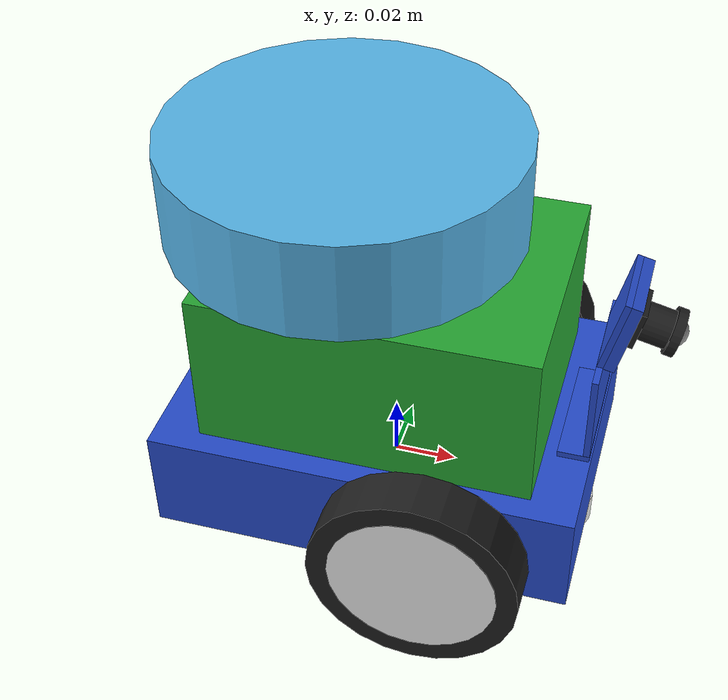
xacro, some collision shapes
<?xml version="1.0"?>
<robot xmlns:xacro="http://www.ros.org/wiki/xacro" name="jetbot" >

  <!-- Xacro arguments for depth camera use -->
  <xacro:arg name="realsense_enable" default="false" />
  <xacro:arg name="pointcloud_enable" default="false" />

  <!-- Xacro arguments for depth lidar use -->
  <xacro:arg name="lidar_enable" default="true" />
  <xacro:arg name="visualize_laser" default="true" />

  <!-- Xacro arguments for imu -->
  <xacro:arg name="imu_enable" default="false" />

  <!-- Xacro arguments for gps -->
  <xacro:arg name="gps_enable" default="false" />

  <!-- Xacro arguments for ultrasonic -->
  <xacro:arg name="ultrasonic_enable" default="false" />

  <!-- All Neccesary Header Files, Macros and Constants -->
  <xacro:include filename="$(find jetbot_ccai)/urdf/includes.xacro" />
  <!-- All Neccesary Header FIles, Macros and Constants -->

  <!-- CHASSIS -->
  <xacro:chassis />
  <!-- LEFT WHEEL -->
  <xacro:wheel_parts prefix="lt" reflect="1" />
  <!-- RIGHT WHEEL -->
  <xacro:wheel_parts prefix="rt" reflect="-1" />
  <!-- FRONT CASTER WHEEL -->
  <xacro:caster_wheel_parts prefix="front" reflect="1" />
  <!-- BACK CASTER WHEEL -->
  <xacro:caster_wheel_parts prefix="back" reflect="-1" />
  <!-- LEFT ANTENNA -->
  <!--xacro:antenna prefix="lt" reflect="1" /-->
  <!-- RIGHT ANTENNA -->
  <!--xacro:antenna prefix="rt" reflect="-1" /-->
  <!-- SENSORS -->
  <!-- MONOCULAR CAMERA -->
  <xacro:camera />
  <!-- BOARDS -->
  <xacro:pcb />

  <!-- REALSENSE CAMERA -->
  <xacro:if value="$(arg realsense_enable)">
    <xacro:sensor_d435 name="realsense_d435" topics_ns="realsense_d435" parent="base_link" publish_pointcloud="$(arg pointcloud_enable)" >
      <origin xyz="0.077 0 0" rpy="0 0 0" />
    </xacro:sensor_d435>
  </xacro:if>

  <!-- RPLIDAR LASER -->
  <xacro:if value="$(arg lidar_enable)" >
    <xacro:sensor_rplidar name="rplidar" topic_ns="scan" parent="pcb_boards" visualize_laser="$(arg visualize_laser)" >
    <!--xacro:sensor_rplidar name="rplidar" topic_ns="rplidar" parent="pcb_boards" visualize_laser="$(arg visualize_laser)" -->
      <origin xyz="0 0 0.058" rpy="0 0 3.14" />
    </xacro:sensor_rplidar >
  </xacro:if>

  <!-- IMU -->
  <xacro:if value="$(arg imu_enable)" >
    <xacro:sensor_imu name="imu" topic_ns="imu" parent="pcb_boards" >
      <origin xyz="0 0 0.0275" rpy="0 0 0" />
    </xacro:sensor_imu>
  </xacro:if>

  <!-- GPS -->
  <xacro:if value="$(arg gps_enable)" >
    <xacro:sensor_gps name="mtk3339" topic_ns="mtk_gps" parent="imu_link" >
      <origin xyz="-0.044 0 0" rpy="0 0 0" />
    </xacro:sensor_gps>
  </xacro:if>

  <!-- Ultrasonic Sensors -->
  <xacro:if value="$(arg ultrasonic_enable)" >
    <xacro:sensor_sonar name="sonar_1" topic_ns="sonar_back_rt" prefix="back_rt" parent="base_link" >
      <origin xyz="-${base_len/3.5} -${base_width/2} ${base_height/2}" rpy="0 0 -${pi/2}" />
    </xacro:sensor_sonar>

    <xacro:sensor_sonar name="sonar_2" topic_ns="sonar_front_rt45" prefix="front_rt45" parent="base_link" >
      <origin xyz="${base_len/2} -${base_width/2} ${base_height+(base_z_offset)/2}" rpy="0 0 -${pi/4}" />
    </xacro:sensor_sonar>

    <xacro:sensor_sonar name="sonar_3" topic_ns="sonar_front" prefix="front" parent="camera_mount_over" >
      <origin xyz="0 0 0" rpy="0 0 0" />
    </xacro:sensor_sonar>

    <xacro:sensor_sonar name="sonar_4" topic_ns="sonar_front_lt45" prefix="front_lt45" parent="base_link" >
      <origin xyz="${base_len/2} ${base_width/2} ${base_height+(base_z_offset)/2}" rpy="0 0 ${pi/4}" />
    </xacro:sensor_sonar>

    <xacro:sensor_sonar name="sonar_5" topic_ns="sonar_back_lt" prefix="back_lt" parent="base_link" >
      <origin xyz="-${base_len/3.5} ${base_width/2} ${base_height/2}" rpy="0 0 ${pi/2}" />
    </xacro:sensor_sonar>

    <xacro:sensor_sonar name="sonar_6" topic_ns="sonar_back_lt45" prefix="back_lt45" parent="base_link" >
      <origin xyz="-${base_len/2} ${base_width/2} ${base_height+(base_z_offset)/2}" rpy="0 0 ${pi/2 + pi/4}" />
    </xacro:sensor_sonar>

    <xacro:sensor_sonar name="sonar_7" topic_ns="sonar_back" prefix="back" parent="base_link" >
      <origin xyz="-${base_len/2} 0 ${base_height/2}" rpy="0 0 ${pi}" />
    </xacro:sensor_sonar>

    <xacro:sensor_sonar name="sonar_8" topic_ns="sonar_back_rt45" prefix="back_rt45" parent="base_link" >
      <origin xyz="-${base_len/2} -${base_width/2} ${base_height+(base_z_offset)/2}" rpy="0 0 -${pi/2 + pi/4}" />
    </xacro:sensor_sonar>
  </xacro:if>

</robot>

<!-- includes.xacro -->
<robot xmlns:xacro="http://www.ros.org/wiki/xacro">

  <!-- Rviz Color Properties -->
  <xacro:include filename="$(find jetbot_ccai)/urdf/includes/materials/materials.xacro" />
  <!-- Rviz Color Properties -->

  <!-- Gazebo Properties -->
  <xacro:include filename="$(find jetbot_ccai)/urdf/includes/gazebo/jetbot.gazebo.xacro" />
  <!-- Gazebo Properties -->

  <!-- Transmission Macro -->
  <xacro:include filename="$(find jetbot_ccai)/urdf/includes/gazebo/transmission.xacro" />
  <!-- Transmission Macro -->

  <!-- Inertia Macros -->
  <xacro:include filename="$(find jetbot_ccai)/urdf/includes/gazebo/inertias.xacro" />
  <!-- Inertia Macros -->

  <!-- Chassis macro -->
  <xacro:include filename="$(find jetbot_ccai)/urdf/includes/parts/chassis.xacro" />
  <!-- Chassis macro -->

  <!-- Antenna Macro -->
  <xacro:include filename="$(find jetbot_ccai)/urdf/includes/parts/antenna.xacro" />
  <!-- Antenna Macro -->

  <!-- Wheel Macro -->
  <xacro:include filename="$(find jetbot_ccai)/urdf/includes/parts/wheels/wheel.xacro" />
  <!-- Wheel Macro -->

  <!-- Caster Wheel Macro -->
  <xacro:include filename="$(find jetbot_ccai)/urdf/includes/parts/wheels/caster.xacro" />
  <!-- Caster Wheel Macro -->

  <!-- Camera-->
  <xacro:include filename="$(find jetbot_ccai)/urdf/includes/parts/sensors/rgbcam/camera.xacro" />
  <!-- Camera-->

  <!-- PCB Boards -->
  <xacro:include filename="$(find jetbot_ccai)/urdf/includes/parts/boards.xacro" />
  <!-- PCB Boards -->

  <!-- Intel Realsense Macro -->
  <xacro:include filename="$(find jetbot_ccai)/urdf/includes/parts/sensors/realsense/_d435.urdf.xacro" />
  <!-- Intel Realsense Macro -->

  <!-- RPLidar -->
  <xacro:include filename="$(find jetbot_ccai)/urdf/includes/parts/sensors/laser/laser.urdf.xacro" />
  <!-- RPLidar -->

  <!-- IMU -->
  <xacro:include filename="$(find jetbot_ccai)/urdf/includes/parts/sensors/imu/bno055.urdf.xacro" />
  <!-- IMU -->

  <!-- GPS -->
  <xacro:include filename="$(find jetbot_ccai)/urdf/includes/parts/sensors/gps/mtk3339.urdf.xacro" />
  <!-- GPS -->

  <!-- Sonar -->
  <xacro:include filename="$(find jetbot_ccai)/urdf/includes/parts/sensors/sonar/hcsr04.urdf.xacro" />
  <!-- SOnar -->

</robot>

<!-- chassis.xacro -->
<robot xmlns:xacro="http://www.ros.org/wiki/xacro">

  <!-- Chassis constants -->
  <xacro:property name="base_len" value="0.134"/>
  <xacro:property name="base_width" value="0.095"/>
  <xacro:property name="base_height" value="0.035"/>
  <xacro:property name="base_z_offset" value="0.013"/>
  <xacro:property name="base_mass" value="0.045" />
  <!--xacro:property name="base_mass" value="0.6" /-->
  <!-- Chassis constants -->

  <!-- CHASSIS (body) -->
  <xacro:macro name="chassis" >

  <link name="base_footprint" />
  <link name="base_link">
    <visual>
      <origin xyz="0 0 ${base_z_offset}"/>
      <geometry>
        <box size="${base_len} ${base_width} ${base_height}"/>
      </geometry>
      <material name="blue"/>
    </visual>
    <collision>
      <origin xyz="0 0 ${base_z_offset}"/>
      <geometry>
        <box size="${base_len} ${base_width} ${base_height}"/>
      </geometry>
    </collision>
  </link>

  <!-- Joint to connect base_link with base_footprint -->
  <joint name="base_footprint_joint" type="fixed">
    <parent link="base_footprint"/>
    <child link="base_link" />
  </joint>

  </xacro:macro>

  <!-- CHASSIS (body) -->

</robot>

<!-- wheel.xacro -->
<robot xmlns:xacro="http://www.ros.org/wiki/xacro">

  <!-- Wheel constants -->
  <xacro:property name="shaft_len" value="0.015" />
  <xacro:property name="shaft_r" value="0.005" />
  <xacro:property name="shaft_xoffset" value="0.023" />
  <xacro:property name="shaft_yoffset" value="0.048" />
  <xacro:property name="wheelc_len" value="0.015" />
  <xacro:property name="wheelc_r" value = "0.026" />
  <xacro:property name="wheel_shaft_mass" value = "0.000283495" />
  <xacro:property name="wheelc_mass" value = "0.283495" />
  <xacro:property name="wheel_mass" value = "0.0181" />

  <!-- Wheel constants -->

  <!-- Inertia Macro -->
  <!--xacro:include filename="$(find jetbot_description)/urdf/includes/gazebo/inertias.xacro" /-->
  <!-- Inertia Macro -->

  <!-- Wheel Macro-->
  <xacro:macro name="wheel_parts" params="prefix reflect">
  <link name="${prefix}_wheel_shaft">
    <visual>
      <origin xyz="0 0 0" rpy="${pi/2} 0 0"/>
      <geometry>
        <cylinder radius="${shaft_r}" length="${shaft_len}" />
      </geometry>
      <material name="white"/>
    </visual>
    <collision>
      <origin xyz="0 0 0" rpy="${pi/2} 0 0"/>
      <geometry>
        <cylinder radius="${shaft_r}" length="${shaft_len}" />
      </geometry>
    </collision>
  </link>
  <joint name="base_${prefix}_wheel_shaft_joint" type="fixed">
    <axis rpy="0 0 0" xyz="0 0 0" />
    <parent link="base_link"/>
    <child link="${prefix}_wheel_shaft"/>
    <origin rpy="0 0 0" xyz="${shaft_xoffset} ${shaft_yoffset*reflect} 0.013" />
  </joint>

  <link name="${prefix}_wheelc">
    <visual>
      <origin rpy="${pi/2} 0 0"/>
      <geometry>
        <cylinder length="${wheelc_len}" radius="${wheelc_r}"/>
      </geometry>
      <material name="white"/>
    </visual>
    <collision>
      <origin rpy="${pi/2} 0 0"/>
      <geometry>
        <cylinder length="${wheelc_len}" radius="${wheelc_r}"/>
      </geometry>
    </collision>
    <!--xacro:cylinder_inertia mass="${wheelc_mass}" r="${wheelc_r}" h="${wheelc_len}" /-->
  </link>
  <joint name="${prefix}_shaft_wheelc_joint" type="fixed">
    <origin xyz="0 ${reflect*(wheelc_r-0.002)/2} 0"/>
    <parent link="${prefix}_wheel_shaft"/>
    <child link="${prefix}_wheelc"/>
  </joint>

  <link name="${prefix}_wheel">
    <visual>
    <origin rpy="${pi/2} 0 0" xyz="0 0 0" />
      <geometry>
        <cylinder length="${wheelc_len}" radius="${wheelc_r + 0.0065}"/>
      </geometry>
      <material name="black"/>
    </visual>
    <collision>
    <origin rpy="${pi/2} 0 0" xyz="0 0 0" />
      <geometry>
        <cylinder length="${wheelc_len}" radius="${wheelc_r + 0.0065}"/>
      </geometry>
    </collision>
    <!--xacro:open_cylinder_inertia mass="${wheel_mass}" r1="${wheelc_r}" r2="${wheelc_r + 0.0065}" h="${wheelc_len}" /-->
  </link>
  <joint name="${prefix}_wheel_joint" type="continuous">
    <axis xyz="0 1 0"/>
    <parent link="${prefix}_wheelc"/>
    <child link="${prefix}_wheel"/>
    <origin xyz ="0 ${-0.0001*reflect} 0"/>
  </joint>
  <xacro:tx prefix="${prefix}" suffix="wheel" />
  </xacro:macro>
  <!-- Wheel Macro-->

</robot>

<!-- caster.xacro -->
<robot xmlns:xacro="http://www.ros.org/wiki/xacro">

  <!-- Caster Ball constants -->
  <xacro:property name="caster_cyl_len" value="0.01" />
  <xacro:property name="caster_cyl_r" value="0.0075" />
  <xacro:property name="caster_xoffset" value="0.06" />
  <xacro:property name="caster_yoffset" value="0.008" />
  <xacro:property name="caster_zoffset" value="-0.0097" />
  <xacro:property name="caster_ball" value="0.005" />
  <xacro:property name="caster_minicyl_mass" value="0.0001" />
  <xacro:property name="caster_cyl_mass" value="0.001" />
  <xacro:property name="caster_ball_mass" value="0.02" />

  <!-- Caster Ball constants -->

  <!-- Inertia Macro -->
  <!--xacro:include filename="$(find jetbot_ccai)/urdf/includes/gazebo/inertias.xacro" /-->
  <!-- Inertia Macro -->

  <!-- Caster Wheel Left and Right Mini Cylinder Macros -->
  <xacro:macro name="caster_minicyl" params="prefix suffix reflect">
  <link name="${prefix}_caster_${suffix}_cyl">
    <visual>
      <geometry>
        <cylinder length="${caster_cyl_len}" radius="${caster_cyl_r/3.75}"/>
      </geometry>
      <material name="white"/>
    </visual>
    <collision>
      <geometry>
        <cylinder length="${caster_cyl_len}" radius="${caster_cyl_r/3.75}"/>
      </geometry>
    </collision>
  </link>
  <joint name="${prefix}_caster_${suffix}_cyl_joint" type="fixed">
    <origin xyz="0 ${reflect*caster_yoffset} 0"/>
    <parent link="${prefix}_caster_base"/>
    <child link="${prefix}_caster_${suffix}_cyl"/>
  </joint>
  </xacro:macro>
  <!-- Caster Wheel Left and Right Mini Cylinder Macros -->

  <!-- Left and Caster Wheel Macros, Including Mini Cylinders -->
  <xacro:macro name="caster_wheel_parts" params="prefix reflect">
  <link name="${prefix}_caster_base">
    <visual>
      <geometry>
        <cylinder length="${caster_cyl_len}" radius="${caster_cyl_r}"/>
      </geometry>
      <material name="white"/>
    </visual>
    <collision>
      <geometry>
        <cylinder length="${caster_cyl_len}" radius="${caster_cyl_r}"/>
      </geometry>
    </collision>
  </link>
  <joint name="base_${prefix}_caster_joint" type="fixed">
    <origin xyz="${reflect*caster_xoffset} 0 ${caster_zoffset}"/>
    <parent link="base_link"/>
    <child link="${prefix}_caster_base"/>
  </joint>

  <xacro:caster_minicyl prefix="${prefix}" suffix="lt" reflect="1" />
  <xacro:caster_minicyl prefix="${prefix}" suffix="rt" reflect="-1" />

  <link name="${prefix}_caster">
    <visual>
      <geometry>
        <sphere radius="${caster_ball}" />
      </geometry>
      <material name="grey"/>
    </visual>
    <collision>
      <geometry>
        <sphere radius="${caster_ball}" />
      </geometry>
    </collision>
  </link>
  <joint name="${prefix}_caster_joint" type="fixed">
    <parent link="${prefix}_caster_base"/>
    <child link="${prefix}_caster"/>
    <origin xyz="0 0 -0.004"/>
  </joint>
  <!--xacro:tx prefix="${prefix}" suffix="caster" /-->
  </xacro:macro>
  <!-- Left and Caster Wheel Macros, Including Mini Cylinders -->

</robot>

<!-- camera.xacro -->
<robot xmlns:xacro="http://www.ros.org/wiki/xacro">

<!-- CAMERA -->
 <xacro:macro name="camera" >
  <link name="camera_mount_base">
    <visual>
      <geometry>
        <box size="0.01 0.04 0.002"/>
      </geometry>
      <material name="blue"/>
    </visual>
    <collision>
      <geometry>
        <box size="0.01 0.04 0.002"/>
      </geometry>
    </collision>
  </link>
  <joint name="camera_mount_base_joint" type="fixed">
    <parent link="base_link"/>
    <child link="camera_mount_base"/>
    <origin rpy="0 0 0" xyz="0.0615 0 0.0315"/>
  </joint>

  <link name="camera_mount_over">
    <visual>
      <origin rpy="0 1.57079632679 0"/>
      <geometry>
        <box size="0.03 0.04 0.002"/>
      </geometry>
      <material name="blue"/>
    </visual>
    <collision>
      <origin rpy="0 1.57079632679 0"/>
      <geometry>
        <box size="0.03 0.04 0.002"/>
      </geometry>
    </collision>
  </link>
  <joint name="camera_mount_over_joint" type="fixed">
    <parent link="camera_mount_base"/>
    <child link="camera_mount_over"/>
    <origin xyz="0.004 0 0.016"/>
  </joint>

  <link name="camera_mount_angled">
    <visual>
      <origin rpy="0 1.57079632679 0"/>
      <geometry>
        <box size="0.025 0.025 0.002"/>
      </geometry>
      <material name="blue"/>
    </visual>
    <collision>
      <origin rpy="0 1.57079632679 0"/>
      <geometry>
        <box size="0.025 0.025 0.002"/>
      </geometry>
    </collision>
  </link>
  <joint name="camera_mount_angled_joint" type="fixed">
    <parent link="camera_mount_over"/>
    <child link="camera_mount_angled"/>
    <origin rpy="0 0.24 0" xyz="0.003 0 0.027"/>
  </joint>

  <link name="camera_screen_base">
    <visual>
      <origin rpy="0 1.57079632679 0"/>
      <geometry>
        <box size="0.025 0.025 0.004"/>
      </geometry>
      <material name="soft_blue"/>
    </visual>
    <collision>
      <origin rpy="0 1.57079632679 0"/>
      <geometry>
        <box size="0.025 0.025 0.004"/>
      </geometry>
    </collision>
  </link>
  <joint name="camera_mount_screen_joint" type="fixed">
    <parent link="camera_mount_angled"/>
    <child link="camera_screen_base"/>
    <origin rpy="0 0 0" xyz="0.0025 0 0"/>
  </joint>

  <link name="camera_pcb_base">
    <visual>
      <origin rpy="0 1.57079632679 0"/>
      <geometry>
        <box size="0.013 0.013 0.004"/>
      </geometry>
      <material name="black"/>
    </visual>
    <collision>
      <origin rpy="0 1.57079632679 0"/>
      <geometry>
        <box size="0.013 0.013 0.004"/>
      </geometry>
    </collision>
  </link>
  <joint name="camera_pcb_base_joint" type="fixed">
    <parent link="camera_screen_base"/>
    <child link="camera_pcb_base"/>
    <origin xyz="0.0025 0 0"/>
  </joint>

  <link name="camera_lens_body">
    <visual>
      <origin rpy="0 1.57079632679 0"/>
      <geometry>
        <cylinder length="0.01" radius="0.006"/>
      </geometry>
      <material name="black"/>
    </visual>
    <collision>
      <origin rpy="0 1.57079632679 0"/>
      <geometry>
        <cylinder length="0.01" radius="0.006"/>
      </geometry>
    </collision>
  </link>
  <joint name="camera_lens_body_joint" type="fixed">
    <parent link="camera_pcb_base"/>
    <child link="camera_lens_body"/>
    <origin xyz="0.007 0 0"/>
  </joint>

  <link name="camera_lens_body_out">
    <visual>
      <origin rpy="0 1.57079632679 0"/>
      <geometry>
        <cylinder length="0.003" radius="0.0075"/>
      </geometry>
      <material name="black"/>
    </visual>
    <collision>
      <origin rpy="0 1.57079632679 0"/>
      <geometry>
        <cylinder length="0.003" radius="0.0075"/>
      </geometry>
    </collision>
  </link>
 <joint name="camera_lens_body_out_joint" type="fixed">
    <parent link="camera_lens_body"/>
    <child link="camera_lens_body_out"/>
    <origin xyz="0.005 0 0"/>
  </joint>

  <link name="camera_lens">
    <visual>
      <origin rpy="0 1.57079632679 0"/>
      <geometry>
        <sphere radius="0.005" />
      </geometry>
      <material name="grey_alpha"/>
    </visual>
    <collision>
      <origin rpy="0 1.57079632679 0"/>
      <geometry>
        <sphere radius="0.005" />
      </geometry>
    </collision>
  </link>
 <joint name="camera_lens_joint" type="fixed">
    <parent link="camera_lens_body_out"/>
    <child link="camera_lens"/>
    <origin xyz="-0.001 0 0"/>
  </joint>
  </xacro:macro>
</robot>

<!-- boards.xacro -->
<robot xmlns:xacro="http://www.ros.org/wiki/xacro">

  <!-- Motor driver and PCB constants -->
  <xacro:property name="box_len" value="0.105" />
  <xacro:property name="box_width" value="0.08" />
  <xacro:property name="box_height" value="0.055" />
  <xacro:property name="box_mass" value="0.3645" />
  <!--xacro:property name="box_mass" value="0.6" /-->
  <!-- Motor driver and PCB constants -->

  <!-- PCB, MOTOR DRIVER AND JETSON NANO -->
  <xacro:macro name="pcb">
    <link name="pcb_boards">
      <visual>
        <geometry>
          <box size="${box_len} ${box_width} ${box_height}"/>
        </geometry>
        <material name="green"/>
      </visual>
      <collision>
        <geometry>
          <box size="${box_len} ${box_width} ${box_height}"/>
        </geometry>
      </collision>
    </link>
    <joint name="base_nano_joint" type="fixed">
      <parent link="base_link"/>
      <child link="pcb_boards"/>
      <origin xyz="0 0 ${box_height}"/>
    </joint>
  </xacro:macro>
  <!-- PCB, MOTOR DRIVER AND JETSON NANO -->

</robot>

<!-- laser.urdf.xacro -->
<robot xmlns:xacro="http://www.ros.org/wiki/xacro">

  <xacro:include filename="$(find jetbot_ccai)/urdf/includes/gazebo/laser.gazebo.xacro"/>

  <!-- LASER (RPLidar) -->
  <xacro:macro name="sensor_rplidar" params="name topic_ns:=rplidar parent *origin visualize_laser:=true">
    <joint name="scan_joint" type="fixed">
      <parent link="${parent}"/>
      <child link="${name}_base_scan"/>
      <xacro:insert_block name="origin" />
    </joint>

    <link name="${name}_base_scan">
      <visual>
        <origin xyz="0 0 0.0" rpy="0 0 0"/>
        <geometry>
          <mesh filename="package://jetbot_ccai/meshes/laser/lds.stl" scale="0.001 0.001 0.001"/>
        </geometry>
        <material name="dark"/>
      </visual>

      <collision>
        <origin xyz="0.015 0 -0.0065" rpy="0 0 0"/>
        <geometry>
          <cylinder length="0.0315" radius="0.055"/>
        </geometry>
      </collision>
    </link>

    <!-- RPLidar Plugin -->
    <xacro:gazebo_rplidar lidar_name="${name}" reference_link="${name}_base_scan" topic_ns="${topic_ns}" visualize_laser="${visualize_laser}" />
  </xacro:macro>
</robot>
